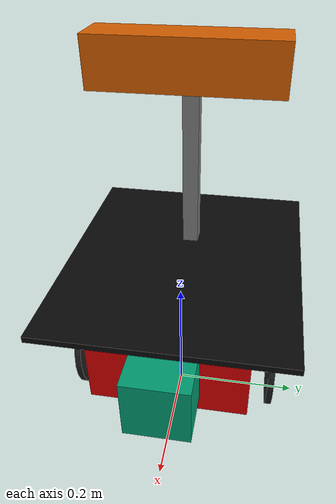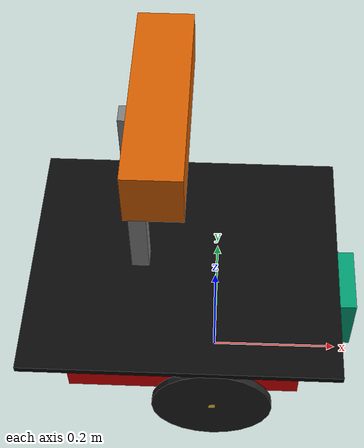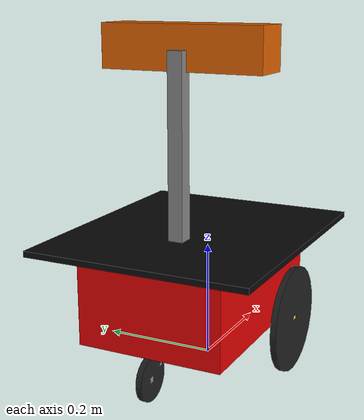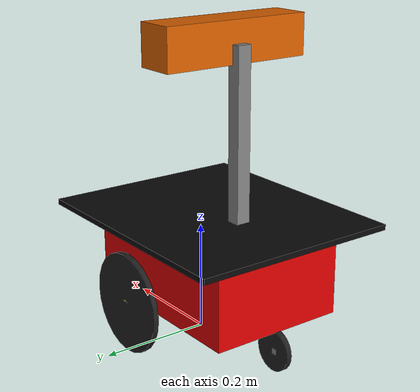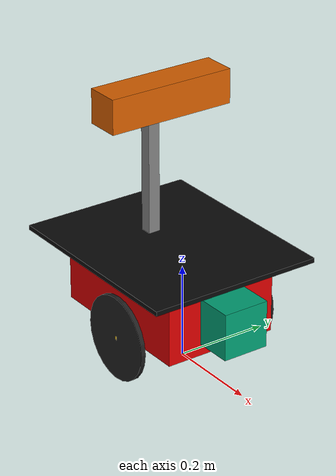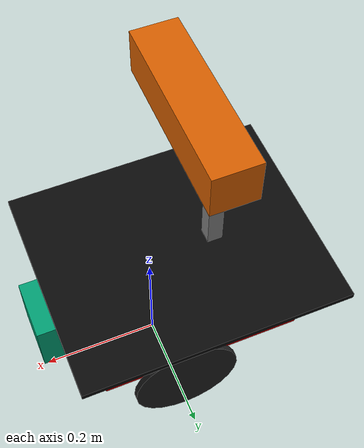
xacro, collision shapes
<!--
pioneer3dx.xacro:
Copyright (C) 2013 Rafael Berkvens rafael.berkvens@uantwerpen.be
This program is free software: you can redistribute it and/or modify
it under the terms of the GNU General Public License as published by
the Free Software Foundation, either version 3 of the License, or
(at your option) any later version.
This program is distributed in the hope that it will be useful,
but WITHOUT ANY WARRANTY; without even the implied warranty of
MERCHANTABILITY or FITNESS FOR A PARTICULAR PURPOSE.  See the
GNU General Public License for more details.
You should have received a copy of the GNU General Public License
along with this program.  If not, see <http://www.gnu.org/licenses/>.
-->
<?xml version="1.0"?>

<robot name="pioneer3dx_k" xmlns:xacro="http://ros.org/wiki/xacro">
  <xacro:include filename="$(find p3dx_description)/urdf/pioneer3dx.xacro" />
  <xacro:include filename="$(find turtlebot_description)/urdf/sensors/kinect.urdf.xacro"/>

  <property name="cam_px" value="-0.04" />
  <property name="cam_py" value="-0.0125" />
  <property name="cam_pz" value="0.561" />
  <property name="cam_or" value="0" />
  <property name="cam_op" value="0" />
  <property name="cam_oy" value="0" />
  <sensor_kinect  parent="base_link"/>

  <link name="post">
		<inertial>
			<mass value="0.1" />
			<origin xyz="0 0 0" />
			<inertia ixx="0.1" ixy="0" ixz="0" iyy="0.1" iyz="0" izz="0.1" />
		</inertial>
		<visual name="post_visual">
			<origin xyz="0 0 0" rpy="0 0 0" />
			<geometry>
				<box size="0.0254 0.0254 0.305" />
			</geometry>
			<material name="post_color"><color rgba="0.5 0.5 0.5 1"/></material>
		</visual>
		<collision>
			<origin xyz="0 0 0" rpy="0 0 0" />
			<geometry>
				<box size="0.0254 0.0254 0.305" />
			</geometry>
		</collision>
  </link>

  <joint name="base_post" type="fixed">
		<origin xyz="-0.11 0 0.3895" rpy="0 0 0" />
		<parent link="base_link" />
		<child link="post" />
  </joint>

</robot>

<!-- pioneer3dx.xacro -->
<robot name="pioneer3dx" xmlns:xacro="http://ros.org/wiki/xacro">

  <!-- import all gazebo-customization elements, including gazebo colors -->
  <xacro:include filename="$(find p3dx_description)/urdf/pioneer3dx.gazebo" />
  <!-- import the pioneer 3dx's wheels -->
  <xacro:include filename="$(find p3dx_description)/urdf/pioneer3dx_wheel.xacro" />

  <!-- chassis -->
	<link name="base_link">
		<inertial>
			<mass value="3.5" />
			<origin xyz="-0.05 0 0" />
			<inertia ixx="1" ixy="0" ixz="0" iyy="1" iyz="0" izz="1" />
		</inertial>

		<visual name="base_visual">
			<origin xyz="-0.045 0 0.148" rpy="0 0 0" />
			<geometry name="pioneer_geom">
				<mesh filename="package://p3dx_description/meshes/chassis.stl" />
			</geometry>
			<material name="ChassisRed">
				<color rgba="0.851 0.0 0.0 1.0" />
			</material>
		</visual>

		<collision>
			<origin xyz="-0.045 0 0.145" rpy="0 0 0" />
			<geometry>
				<box size="0.35 0.25 0.14" />
			</geometry>
		</collision>
	</link>

  <!-- top_plate -->
	<link name="top_plate">
		<inertial>
			<mass value="0.01" />
			<origin xyz="0 0 0" />
			<inertia ixx="1" ixy="0" ixz="0" iyy="1" iyz="0" izz="1" />
		</inertial>

		<visual name="base_visual">
			<origin xyz="0 0 0" rpy="0 0 0" />
			<geometry name="top_geom">
				<mesh filename="package://p3dx_description/meshes/top.stl" />
			</geometry>

			<material name="TopBlack">
				<color rgba="0.038 0.038 0.038 1.0" />
			</material>
		</visual>

		<collision>
			<origin xyz="0.0 0 0" rpy="0 0 0" />
			<geometry name="pioneer_geom">
				<box size="0.45 0.38 0.01" />
			</geometry>
		</collision>
	</link>

	<joint name="base_top_joint" type="fixed">
		<origin xyz="-0.045 0 0.234" rpy="0 0 0" />
		<parent link="base_link" />
		<child link="top_plate" />
	</joint>

  <!-- swivel -->
	<link name="swivel">
		<inertial>
			<mass value="0.1" />
			<origin xyz="0 0 0" />
			<inertia ixx="0.01" ixy="0" ixz="0" iyy="0.01" iyz="0" izz="0.01" />
		</inertial>

		<visual name="base_visual">
			<origin xyz="0 0 0" rpy="0 0 0" />
			<geometry name="pioneer_geom">
				<mesh filename="package://p3dx_description/meshes/swivel.stl" />
			</geometry>
			<material name="swivel">
				<color rgba="0.5 0.5 0.5 1" />
			</material>
		</visual>

		<collision>
			<origin xyz="0 0 0" rpy="0 0 0" />
			<geometry>
				<box size="0.01 0.01 0.01" />
			</geometry>
		</collision>
	</link>

	<joint name="base_swivel_joint" type="continuous">
		<origin xyz="-0.185 0 0.055" rpy="0 0 0" />
		<axis xyz="0 0 1" />
		<anchor xyz="0 0 0" />
		<limit effort="100" velocity="100" k_velocity="0" />
		<joint_properties damping="0.0" friction="0.0" />
		<parent link="base_link" />
		<child link="swivel" />
	</joint>

  <!-- center_hubcap -->
	<link name="center_hubcap">
		<inertial>
			<mass value="0.01" />
			<origin xyz="0 0 0" />
			<inertia ixx="0.012411765597" ixy="-0.000711733678" ixz="0.00050272983"
				iyy="0.015218160428" iyz="-0.000004273467" izz="0.011763977943" />
		</inertial>

		<visual name="base_visual">
			<origin xyz="0 0 0" rpy="0 0 0" />
			<geometry name="pioneer_geom">
				<mesh filename="package://p3dx_description/meshes/center_hubcap.stl" />
			</geometry>
			<material name="swivel">
				<color rgba="0.5 0.5 0.5 1" />
			</material>
		</visual>

		<collision>
			<origin xyz="0 0 0" rpy="0 0 0" />
			<geometry>
				<box size="0.01 0.01 0.01" />
			</geometry>
		</collision>
	</link>

	<joint name="swivel_hubcap_joint" type="continuous">
		<origin xyz="-0.026 0 -0.016" rpy="0 0 0" />
		<axis xyz="0 1 0" />
		<anchor xyz="0 0 0" />
		<limit effort="100" velocity="100" k_velocity="0" />
		<joint_properties damping="0.0" friction="0.0" />
		<parent link="swivel" />
		<child link="center_wheel" />
	</joint>

  <!-- center_wheel -->
	<link name="center_wheel">
		<inertial>
			<mass value="0.1" />
			<origin xyz="0 0 0" />
			<inertia ixx="0.012411765597" ixy="-0.000711733678" ixz="0.00050272983"
				iyy="0.015218160428" iyz="-0.000004273467" izz="0.011763977943" />
		</inertial>

		<visual name="base_visual">
			<origin xyz="0 0 0" rpy="0 0 0" />
			<geometry name="pioneer_geom">
				<mesh filename="package://p3dx_description/meshes/center_wheel.stl" />
			</geometry>
			<material name="WheelBlack">
				<color rgba="0.117 0.117 0.117 1" />
			</material>
		</visual>

		<collision>
			<origin xyz="0 0 0" rpy="${-3.1415927/2.0} 0 0" />
			<geometry>
				<cylinder radius="0.0375" length="0.01" />
			</geometry>
		</collision>
	</link>

	<joint name="center_wheel_joint" type="fixed">
		<origin xyz="-0.0035 0 -0.001" rpy="0 0 0"/>
		<parent link="center_wheel"/>
		<child link="center_hubcap"/>
	</joint>

	<xacro:p3dx_wheel suffix="left" parent="base_link" reflect="1"/>
	<xacro:p3dx_wheel suffix="right" parent="base_link" reflect="-1"/>

  <!-- front_sonar -->
	<link name="front_sonar">
		<inertial>
			<mass value="0.0001" />
			<origin xyz="0 0 0" />
			<inertia ixx="1" ixy="0" ixz="0" iyy="1" iyz="0" izz="1" />
		</inertial>

		<visual name="front_sonar_vis">
			<origin rpy="0 0 0" xyz="0 0 0" />
			<geometry name="pioneer_geom">
				<mesh filename="package://p3dx_description/meshes/front_sonar.stl" />
			</geometry>
			<material name="SonarYellow">
				<color rgba="0.715 0.583 0.210 1.0" />
			</material>
		</visual>

		<collision>
			<origin rpy="0 0 0" xyz="0 0 0" />
			<geometry>
				<box size="0.01 0.01 0.01" />
			</geometry>
		</collision>
	</link>

	<joint name="base_front_joint" type="fixed">
		<origin rpy="0 0 0" xyz="0.109 0 0.209" />
		<parent link="base_link" />
		<child link="front_sonar" />
	</joint>

	<!-- lms100 laser -->
	<link name="lms100">
		<inertial>
			<mass value="1e-5" />
			<origin xyz="0 0 0" rpy="0 0 0" />
			<inertia ixx="1e-6" ixy="0" ixz="0" iyy="1e-6" iyz="0" izz="1e-6" />
		</inertial>

		<visual>
			<origin xyz="0 0 0" rpy="0 0 0" />
			<geometry>
				<mesh filename="package://p3dx_description/meshes/lms100.dae" />
			</geometry>
		</visual>

		<collision>
			<origin xyz="0 0 0" rpy="0 0 0" />
			<geometry>
				<box size="0.1 0.1 0.1" />
			</geometry>
		</collision>
	</link>

	<joint name="lms100_joint" type="fixed">
		<axis xyz="0 1 0" />
		<origin xyz="0.16 0 0.15" rpy="0 0 0" />
		<parent link="base_link" />
		<child link="lms100" />
	</joint>

</robot>

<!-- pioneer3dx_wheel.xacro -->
<robot xmlns:xacro="http://ros.org/wiki/xacro">

	<!-- properties (constants) -->
	<property name="M_PI" value="3.14159" />

	<!-- right/left hubcap + wheel -->
	<xacro:macro name="p3dx_wheel" params="suffix parent reflect">

		<!-- wheel -->
		<link name="p3dx_${suffix}_wheel">
			<inertial>
				<mass value="0.5" />
				<origin xyz="0 0 0" />
				<inertia ixx="0.012411765597" ixy="0" ixz="0" iyy="0.015218160428"
					iyz="0" izz="0.011763977943" />
			</inertial>

			<visual name="base_visual">
				<origin xyz="0 0 0" rpy="0 0 0" />
				<geometry name="pioneer_geom">
					<mesh filename="package://p3dx_description/meshes/${suffix}_wheel.stl" />
				</geometry>
				<material name="WheelBlack">
					<color rgba="0.117 0.117 0.117 1" />
				</material>
			</visual>

			<collision>
				<origin xyz="0 0 0" rpy="${-3.1415927/2} 0 0" />
				<geometry>
					<cylinder radius="0.09" length="0.01" />
				</geometry>
			</collision>
		</link>

		<joint name="base_${suffix}_hubcap_joint" type="fixed">
			<origin xyz="0 0 0" rpy="0 0 0" />
			<parent link="p3dx_${suffix}_wheel" />
			<child link="p3dx_${suffix}_hubcap" />
		</joint>

		<!-- hubcap -->
		<link name="p3dx_${suffix}_hubcap">
			<inertial>
				<mass value="0.01" />
				<origin xyz="0 0 0" />
				<inertia ixx="0.012411765597" ixy="0" ixz="0" iyy="0.015218160428"
					iyz="0" izz="0.011763977943" />
			</inertial>

			<visual name="base_visual">
				<origin xyz="0 0 0" rpy="0 0 0" />
				<geometry name="pioneer_geom">
					<mesh filename="package://p3dx_description/meshes/${suffix}_hubcap.stl" />
				</geometry>

				<material name="HubcapYellow">
					<color rgba="1.0 0.811 0.151 1.0" />
				</material>
			</visual>

			<collision>
				<origin xyz="0 0 0" rpy="0 0 0" />
				<geometry>
					<box size="0.01 0.01 0.01" />
				</geometry>
			</collision>
		</link>

		<joint name="base_${suffix}_wheel_joint" type="continuous">
			<axis xyz="0 1 0" />
			<anchor xyz="0 0 0" />
			<limit effort="100" velocity="100" />
			<joint_properties damping="0.0" friction="0.0" />
			<origin xyz="0 ${reflect*0.158} 0.091" rpy="0 0 0" />
			<parent link="base_link" />
			<child link="p3dx_${suffix}_wheel" />
		</joint>

		<!-- gazebo elements -->

	    <transmission name="${parent}_${suffix}_wheel_trans">
	      <type>pr2_mechanism_model/SimpleTransmission</type>
	      <joint name="base_${suffix}_wheel_joint">
	      	<hardwareInterface>VelocityJointInterface</hardwareInterface>
	  	  </joint>
	      <actuator name="base_${suffix}_wheel_motor">
	        <mechanicalReduction>${reflect * 624/35 * 80/19}</mechanicalReduction>
	      </actuator>
	    </transmission>

		<gazebo reference="p3dx_${suffix}_hubcap">
			<material>Gazebo/Yellow</material>
		</gazebo>

		<gazebo reference="p3dx_${suffix}_wheel">
			<material>Gazebo/Black</material>
			<mu1>0.5</mu1>
			<mu2>50.0</mu2>
			<kp>100000000.0</kp>
			<kd>1.0</kd>
		</gazebo>

	</xacro:macro>

</robot>

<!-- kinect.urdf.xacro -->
<robot name="sensor_kinect" xmlns:xacro="http://ros.org/wiki/xacro">
  <xacro:include filename="$(find turtlebot_description)/urdf/turtlebot_gazebo.urdf.xacro"/>
  <xacro:include filename="$(find turtlebot_description)/urdf/turtlebot_properties.urdf.xacro"/>

  <xacro:property name="kinect_cam_py" value="-0.0125"/>
  <!-- Parameterised in part by the values in turtlebot_properties.urdf.xacro -->
  <xacro:macro name="sensor_kinect" params="parent">
    <joint name="camera_rgb_joint" type="fixed">
      <origin xyz="${cam_px} ${kinect_cam_py} ${cam_pz}" rpy="${cam_or} ${cam_op} ${cam_oy}"/>
      <parent link="${parent}"/>
      <child link="camera_rgb_frame" />
    </joint>
    <link name="camera_rgb_frame"/>

    <joint name="camera_rgb_optical_joint" type="fixed">
      <origin xyz="0 0 0" rpy="${-M_PI/2} 0 ${-M_PI/2}" />
      <parent link="camera_rgb_frame" />
      <child link="camera_rgb_optical_frame" />
    </joint>
    <link name="camera_rgb_optical_frame"/>

    <joint name="camera_joint" type="fixed">
      <origin xyz="-0.031 ${-kinect_cam_py} -0.016" rpy="0 0 0"/>
      <parent link="camera_rgb_frame"/>
      <child link="camera_link"/>
    </joint>
      <link name="camera_link">
      <visual>
       <origin xyz="0 0 0" rpy="0 0 ${M_PI/2}"/>
        <geometry>
         <mesh filename="package://turtlebot_description/meshes/sensors/kinect.dae"/>
        </geometry>
      </visual>
  	  <collision>
        <origin xyz="0.0 0.0 0.0" rpy="0 0 0"/>
  	    <geometry>
  	      <box size="0.07271 0.27794 0.073"/>
  	    </geometry>
  	  </collision>
      <inertial>
        <mass value="0.564" />
        <origin xyz="0 0 0" />
        <inertia ixx="0.003881243" ixy="0.0" ixz="0.0"
                 iyy="0.000498940" iyz="0.0"
                 izz="0.003879257" />
      </inertial>
    </link>

	<joint name="camera_depth_joint" type="fixed">
	  <origin xyz="0 ${2 * -kinect_cam_py} 0" rpy="0 0 0" />
	  <parent link="camera_rgb_frame" />
	  <child link="camera_depth_frame" />
	</joint>
	<link name="camera_depth_frame"/>

	<joint name="camera_depth_optical_joint" type="fixed">
	  <origin xyz="0 0 0" rpy="${-M_PI/2} 0 ${-M_PI/2}" />
	  <parent link="camera_depth_frame" />
	  <child link="camera_depth_optical_frame" />
	</joint>
	<link name="camera_depth_optical_frame"/>

	<!-- Kinect sensor for simulation -->
	<xacro:turtlebot_sim_3dsensor/>
  </xacro:macro>
</robot>
